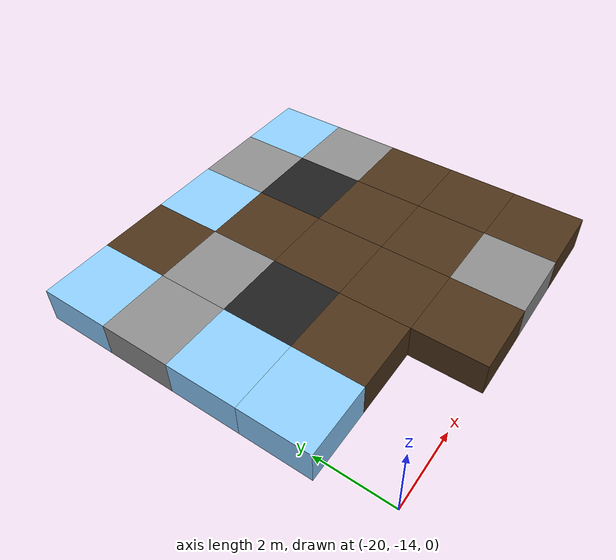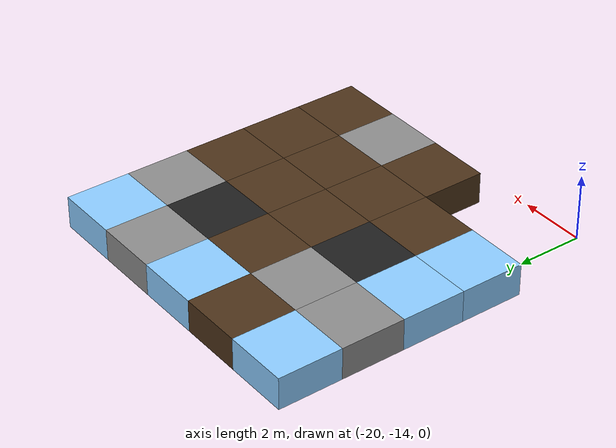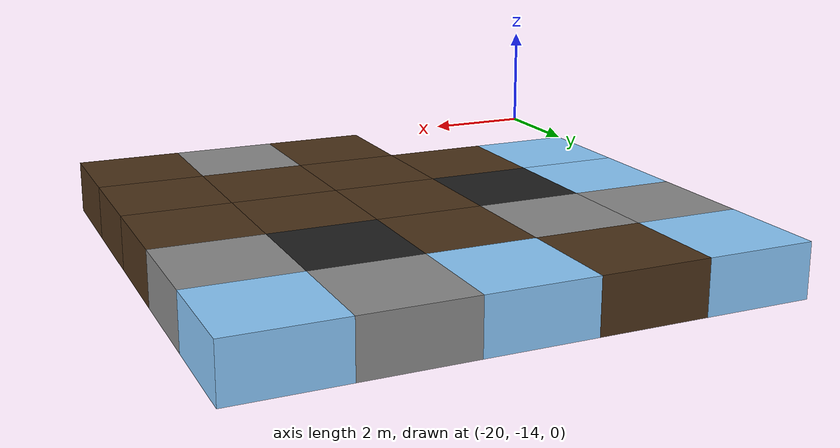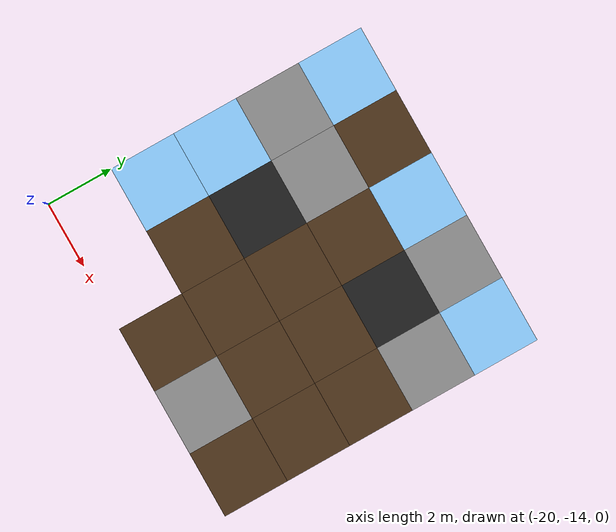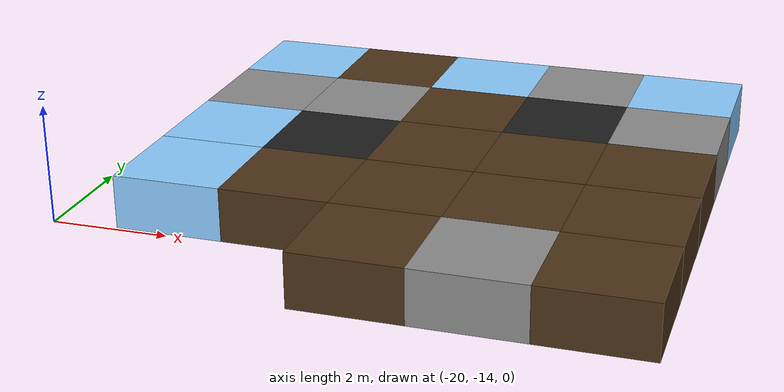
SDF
<sdf version="1.5">
 <world name="squares_example">
  <model name="tile_8_9">
   <static>true</static>
   <pose>-15.000 -13.000 -0.500 0 0 0</pose>
   <link name="link">
    <collision name="col">
     <geometry><box><size>2.0 2.0 1.0</size></box></geometry>
     <surface>
      <friction>
       <ode><mu>0.6</mu><mu2>0.4</mu2><fdir1>1 0 0</fdir1><slip1>0.08</slip1><slip2>0.08</slip2></ode>
       <torsional>
        <coefficient>0.03</coefficient>
        <use_patch_radius>false</use_patch_radius>
        <surface_radius>0.12</surface_radius>
        <ode><slip>0.0</slip></ode>
       </torsional>
      </friction>
      <bounce><restitution_coefficient>0.0</restitution_coefficient><threshold>0.1</threshold></bounce>
      <contact>
       <ode><kp>1000000.0</kp><kd>10000.0</kd><max_vel>0.01</max_vel><min_depth>0.0</min_depth></ode>
      </contact>
     </surface>
    </collision>
    <visual name="visual">
     <geometry><box><size>2.0 2.0 1.0</size></box></geometry>
     <material>
      <diffuse>0.30 0.20 0.10 1</diffuse>
      <ambient>0 0 0 0</ambient>
      <specular>0 0 0 1</specular>
      <emissive>0 0 0 1</emissive>
     </material>
    </visual>
   </link>
  </model>
  <model name="tile_9_9">
   <static>true</static>
   <pose>-13.000 -13.000 -0.500 0 0 0</pose>
   <link name="link">
    <collision name="col">
     <geometry><box><size>2.0 2.0 1.0</size></box></geometry>
     <surface>
      <friction>
       <ode><mu>0.8</mu><mu2>0.3</mu2><fdir1>1 0 0</fdir1><slip1>0.0</slip1><slip2>0.0</slip2></ode>
       <torsional>
        <coefficient>0.03</coefficient>
        <use_patch_radius>false</use_patch_radius>
        <surface_radius>0.12</surface_radius>
        <ode><slip>0.0</slip></ode>
       </torsional>
      </friction>
      <bounce><restitution_coefficient>0.0</restitution_coefficient><threshold>0.1</threshold></bounce>
      <contact>
       <ode><kp>10000000000.0</kp><kd>10000000.0</kd><max_vel>0.01</max_vel><min_depth>0.0</min_depth></ode>
      </contact>
     </surface>
    </collision>
    <visual name="visual">
     <geometry><box><size>2.0 2.0 1.0</size></box></geometry>
     <material>
      <diffuse>0.55 0.55 0.55 1</diffuse>
      <ambient>0 0 0 0</ambient>
      <specular>0 0 0 1</specular>
      <emissive>0 0 0 1</emissive>
     </material>
    </visual>
   </link>
  </model>
  <model name="tile_10_9">
   <static>true</static>
   <pose>-11.000 -13.000 -0.500 0 0 0</pose>
   <link name="link">
    <collision name="col">
     <geometry><box><size>2.0 2.0 1.0</size></box></geometry>
     <surface>
      <friction>
       <ode><mu>0.6</mu><mu2>0.4</mu2><fdir1>1 0 0</fdir1><slip1>0.08</slip1><slip2>0.08</slip2></ode>
       <torsional>
        <coefficient>0.03</coefficient>
        <use_patch_radius>false</use_patch_radius>
        <surface_radius>0.12</surface_radius>
        <ode><slip>0.0</slip></ode>
       </torsional>
      </friction>
      <bounce><restitution_coefficient>0.0</restitution_coefficient><threshold>0.1</threshold></bounce>
      <contact>
       <ode><kp>1000000.0</kp><kd>10000.0</kd><max_vel>0.01</max_vel><min_depth>0.0</min_depth></ode>
      </contact>
     </surface>
    </collision>
    <visual name="visual">
     <geometry><box><size>2.0 2.0 1.0</size></box></geometry>
     <material>
      <diffuse>0.30 0.20 0.10 1</diffuse>
      <ambient>0 0 0 0</ambient>
      <specular>0 0 0 1</specular>
      <emissive>0 0 0 1</emissive>
     </material>
    </visual>
   </link>
  </model>
  <model name="tile_6_10">
   <static>true</static>
   <pose>-19.000 -11.000 -0.500 0 0 0</pose>
   <link name="link">
    <collision name="col">
     <geometry><box><size>2.0 2.0 1.0</size></box></geometry>
     <surface>
      <friction>
       <ode><mu>0.03</mu><mu2>0.02</mu2><fdir1>1 0 0</fdir1><slip1>0.03</slip1><slip2>0.03</slip2></ode>
       <torsional>
        <coefficient>0.005</coefficient>
        <use_patch_radius>false</use_patch_radius>
        <surface_radius>0.12</surface_radius>
        <ode><slip>0.01</slip></ode>
       </torsional>
      </friction>
      <bounce><restitution_coefficient>0.0</restitution_coefficient><threshold>0.1</threshold></bounce>
      <contact>
       <ode><kp>10000000.0</kp><kd>1000.0</kd><max_vel>0.01</max_vel><min_depth>0.0</min_depth></ode>
      </contact>
     </surface>
    </collision>
    <visual name="visual">
     <geometry><box><size>2.0 2.0 1.0</size></box></geometry>
     <material>
      <diffuse>0.55 0.80 1.00 1</diffuse>
      <ambient>0 0 0 0</ambient>
      <specular>0 0 0 1</specular>
      <emissive>0 0 0 1</emissive>
     </material>
    </visual>
   </link>
  </model>
  <model name="tile_7_10">
   <static>true</static>
   <pose>-17.000 -11.000 -0.500 0 0 0</pose>
   <link name="link">
    <collision name="col">
     <geometry><box><size>2.0 2.0 1.0</size></box></geometry>
     <surface>
      <friction>
       <ode><mu>0.6</mu><mu2>0.4</mu2><fdir1>1 0 0</fdir1><slip1>0.08</slip1><slip2>0.08</slip2></ode>
       <torsional>
        <coefficient>0.03</coefficient>
        <use_patch_radius>false</use_patch_radius>
        <surface_radius>0.12</surface_radius>
        <ode><slip>0.0</slip></ode>
       </torsional>
      </friction>
      <bounce><restitution_coefficient>0.0</restitution_coefficient><threshold>0.1</threshold></bounce>
      <contact>
       <ode><kp>1000000.0</kp><kd>10000.0</kd><max_vel>0.01</max_vel><min_depth>0.0</min_depth></ode>
      </contact>
     </surface>
    </collision>
    <visual name="visual">
     <geometry><box><size>2.0 2.0 1.0</size></box></geometry>
     <material>
      <diffuse>0.30 0.20 0.10 1</diffuse>
      <ambient>0 0 0 0</ambient>
      <specular>0 0 0 1</specular>
      <emissive>0 0 0 1</emissive>
     </material>
    </visual>
   </link>
  </model>
  <model name="tile_8_10">
   <static>true</static>
   <pose>-15.000 -11.000 -0.500 0 0 0</pose>
   <link name="link">
    <collision name="col">
     <geometry><box><size>2.0 2.0 1.0</size></box></geometry>
     <surface>
      <friction>
       <ode><mu>0.6</mu><mu2>0.4</mu2><fdir1>1 0 0</fdir1><slip1>0.08</slip1><slip2>0.08</slip2></ode>
       <torsional>
        <coefficient>0.03</coefficient>
        <use_patch_radius>false</use_patch_radius>
        <surface_radius>0.12</surface_radius>
        <ode><slip>0.0</slip></ode>
       </torsional>
      </friction>
      <bounce><restitution_coefficient>0.0</restitution_coefficient><threshold>0.1</threshold></bounce>
      <contact>
       <ode><kp>1000000.0</kp><kd>10000.0</kd><max_vel>0.01</max_vel><min_depth>0.0</min_depth></ode>
      </contact>
     </surface>
    </collision>
    <visual name="visual">
     <geometry><box><size>2.0 2.0 1.0</size></box></geometry>
     <material>
      <diffuse>0.30 0.20 0.10 1</diffuse>
      <ambient>0 0 0 0</ambient>
      <specular>0 0 0 1</specular>
      <emissive>0 0 0 1</emissive>
     </material>
    </visual>
   </link>
  </model>
  <model name="tile_9_10">
   <static>true</static>
   <pose>-13.000 -11.000 -0.500 0 0 0</pose>
   <link name="link">
    <collision name="col">
     <geometry><box><size>2.0 2.0 1.0</size></box></geometry>
     <surface>
      <friction>
       <ode><mu>0.6</mu><mu2>0.4</mu2><fdir1>1 0 0</fdir1><slip1>0.08</slip1><slip2>0.08</slip2></ode>
       <torsional>
        <coefficient>0.03</coefficient>
        <use_patch_radius>false</use_patch_radius>
        <surface_radius>0.12</surface_radius>
        <ode><slip>0.0</slip></ode>
       </torsional>
      </friction>
      <bounce><restitution_coefficient>0.0</restitution_coefficient><threshold>0.1</threshold></bounce>
      <contact>
       <ode><kp>1000000.0</kp><kd>10000.0</kd><max_vel>0.01</max_vel><min_depth>0.0</min_depth></ode>
      </contact>
     </surface>
    </collision>
    <visual name="visual">
     <geometry><box><size>2.0 2.0 1.0</size></box></geometry>
     <material>
      <diffuse>0.30 0.20 0.10 1</diffuse>
      <ambient>0 0 0 0</ambient>
      <specular>0 0 0 1</specular>
      <emissive>0 0 0 1</emissive>
     </material>
    </visual>
   </link>
  </model>
  <model name="tile_10_10">
   <static>true</static>
   <pose>-11.000 -11.000 -0.500 0 0 0</pose>
   <link name="link">
    <collision name="col">
     <geometry><box><size>2.0 2.0 1.0</size></box></geometry>
     <surface>
      <friction>
       <ode><mu>0.6</mu><mu2>0.4</mu2><fdir1>1 0 0</fdir1><slip1>0.08</slip1><slip2>0.08</slip2></ode>
       <torsional>
        <coefficient>0.03</coefficient>
        <use_patch_radius>false</use_patch_radius>
        <surface_radius>0.12</surface_radius>
        <ode><slip>0.0</slip></ode>
       </torsional>
      </friction>
      <bounce><restitution_coefficient>0.0</restitution_coefficient><threshold>0.1</threshold></bounce>
      <contact>
       <ode><kp>1000000.0</kp><kd>10000.0</kd><max_vel>0.01</max_vel><min_depth>0.0</min_depth></ode>
      </contact>
     </surface>
    </collision>
    <visual name="visual">
     <geometry><box><size>2.0 2.0 1.0</size></box></geometry>
     <material>
      <diffuse>0.30 0.20 0.10 1</diffuse>
      <ambient>0 0 0 0</ambient>
      <specular>0 0 0 1</specular>
      <emissive>0 0 0 1</emissive>
     </material>
    </visual>
   </link>
  </model>
  <model name="tile_6_11">
   <static>true</static>
   <pose>-19.000 -9.000 -0.500 0 0 0</pose>
   <link name="link">
    <collision name="col">
     <geometry><box><size>2.0 2.0 1.0</size></box></geometry>
     <surface>
      <friction>
       <ode><mu>0.03</mu><mu2>0.02</mu2><fdir1>1 0 0</fdir1><slip1>0.03</slip1><slip2>0.03</slip2></ode>
       <torsional>
        <coefficient>0.005</coefficient>
        <use_patch_radius>false</use_patch_radius>
        <surface_radius>0.12</surface_radius>
        <ode><slip>0.01</slip></ode>
       </torsional>
      </friction>
      <bounce><restitution_coefficient>0.0</restitution_coefficient><threshold>0.1</threshold></bounce>
      <contact>
       <ode><kp>10000000.0</kp><kd>1000.0</kd><max_vel>0.01</max_vel><min_depth>0.0</min_depth></ode>
      </contact>
     </surface>
    </collision>
    <visual name="visual">
     <geometry><box><size>2.0 2.0 1.0</size></box></geometry>
     <material>
      <diffuse>0.55 0.80 1.00 1</diffuse>
      <ambient>0 0 0 0</ambient>
      <specular>0 0 0 1</specular>
      <emissive>0 0 0 1</emissive>
     </material>
    </visual>
   </link>
  </model>
  <model name="tile_7_11">
   <static>true</static>
   <pose>-17.000 -9.000 -0.500 0 0 0</pose>
   <link name="link">
    <collision name="col">
     <geometry><box><size>2.0 2.0 1.0</size></box></geometry>
     <surface>
      <friction>
       <ode><mu>0.4</mu><mu2>0.15</mu2><fdir1>1 0 0</fdir1><slip1>0.0</slip1><slip2>0.0</slip2></ode>
       <torsional>
        <coefficient>0.03</coefficient>
        <use_patch_radius>false</use_patch_radius>
        <surface_radius>0.12</surface_radius>
        <ode><slip>0.0</slip></ode>
       </torsional>
      </friction>
      <bounce><restitution_coefficient>0.0</restitution_coefficient><threshold>0.1</threshold></bounce>
      <contact>
       <ode><kp>1000000000.0</kp><kd>1000000.0</kd><max_vel>0.01</max_vel><min_depth>0.0</min_depth></ode>
      </contact>
     </surface>
    </collision>
    <visual name="visual">
     <geometry><box><size>2.0 2.0 1.0</size></box></geometry>
     <material>
      <diffuse>0.12 0.12 0.12 1</diffuse>
      <ambient>0 0 0 0</ambient>
      <specular>0 0 0 1</specular>
      <emissive>0 0 0 1</emissive>
     </material>
    </visual>
   </link>
  </model>
  <model name="tile_8_11">
   <static>true</static>
   <pose>-15.000 -9.000 -0.500 0 0 0</pose>
   <link name="link">
    <collision name="col">
     <geometry><box><size>2.0 2.0 1.0</size></box></geometry>
     <surface>
      <friction>
       <ode><mu>0.6</mu><mu2>0.4</mu2><fdir1>1 0 0</fdir1><slip1>0.08</slip1><slip2>0.08</slip2></ode>
       <torsional>
        <coefficient>0.03</coefficient>
        <use_patch_radius>false</use_patch_radius>
        <surface_radius>0.12</surface_radius>
        <ode><slip>0.0</slip></ode>
       </torsional>
      </friction>
      <bounce><restitution_coefficient>0.0</restitution_coefficient><threshold>0.1</threshold></bounce>
      <contact>
       <ode><kp>1000000.0</kp><kd>10000.0</kd><max_vel>0.01</max_vel><min_depth>0.0</min_depth></ode>
      </contact>
     </surface>
    </collision>
    <visual name="visual">
     <geometry><box><size>2.0 2.0 1.0</size></box></geometry>
     <material>
      <diffuse>0.30 0.20 0.10 1</diffuse>
      <ambient>0 0 0 0</ambient>
      <specular>0 0 0 1</specular>
      <emissive>0 0 0 1</emissive>
     </material>
    </visual>
   </link>
  </model>
  <model name="tile_9_11">
   <static>true</static>
   <pose>-13.000 -9.000 -0.500 0 0 0</pose>
   <link name="link">
    <collision name="col">
     <geometry><box><size>2.0 2.0 1.0</size></box></geometry>
     <surface>
      <friction>
       <ode><mu>0.6</mu><mu2>0.4</mu2><fdir1>1 0 0</fdir1><slip1>0.08</slip1><slip2>0.08</slip2></ode>
       <torsional>
        <coefficient>0.03</coefficient>
        <use_patch_radius>false</use_patch_radius>
        <surface_radius>0.12</surface_radius>
        <ode><slip>0.0</slip></ode>
       </torsional>
      </friction>
      <bounce><restitution_coefficient>0.0</restitution_coefficient><threshold>0.1</threshold></bounce>
      <contact>
       <ode><kp>1000000.0</kp><kd>10000.0</kd><max_vel>0.01</max_vel><min_depth>0.0</min_depth></ode>
      </contact>
     </surface>
    </collision>
    <visual name="visual">
     <geometry><box><size>2.0 2.0 1.0</size></box></geometry>
     <material>
      <diffuse>0.30 0.20 0.10 1</diffuse>
      <ambient>0 0 0 0</ambient>
      <specular>0 0 0 1</specular>
      <emissive>0 0 0 1</emissive>
     </material>
    </visual>
   </link>
  </model>
  <model name="tile_10_11">
   <static>true</static>
   <pose>-11.000 -9.000 -0.500 0 0 0</pose>
   <link name="link">
    <collision name="col">
     <geometry><box><size>2.0 2.0 1.0</size></box></geometry>
     <surface>
      <friction>
       <ode><mu>0.6</mu><mu2>0.4</mu2><fdir1>1 0 0</fdir1><slip1>0.08</slip1><slip2>0.08</slip2></ode>
       <torsional>
        <coefficient>0.03</coefficient>
        <use_patch_radius>false</use_patch_radius>
        <surface_radius>0.12</surface_radius>
        <ode><slip>0.0</slip></ode>
       </torsional>
      </friction>
      <bounce><restitution_coefficient>0.0</restitution_coefficient><threshold>0.1</threshold></bounce>
      <contact>
       <ode><kp>1000000.0</kp><kd>10000.0</kd><max_vel>0.01</max_vel><min_depth>0.0</min_depth></ode>
      </contact>
     </surface>
    </collision>
    <visual name="visual">
     <geometry><box><size>2.0 2.0 1.0</size></box></geometry>
     <material>
      <diffuse>0.30 0.20 0.10 1</diffuse>
      <ambient>0 0 0 0</ambient>
      <specular>0 0 0 1</specular>
      <emissive>0 0 0 1</emissive>
     </material>
    </visual>
   </link>
  </model>
  <model name="tile_6_12">
   <static>true</static>
   <pose>-19.000 -7.000 -0.500 0 0 0</pose>
   <link name="link">
    <collision name="col">
     <geometry><box><size>2.0 2.0 1.0</size></box></geometry>
     <surface>
      <friction>
       <ode><mu>0.8</mu><mu2>0.3</mu2><fdir1>1 0 0</fdir1><slip1>0.0</slip1><slip2>0.0</slip2></ode>
       <torsional>
        <coefficient>0.03</coefficient>
        <use_patch_radius>false</use_patch_radius>
        <surface_radius>0.12</surface_radius>
        <ode><slip>0.0</slip></ode>
       </torsional>
      </friction>
      <bounce><restitution_coefficient>0.0</restitution_coefficient><threshold>0.1</threshold></bounce>
      <contact>
       <ode><kp>10000000000.0</kp><kd>10000000.0</kd><max_vel>0.01</max_vel><min_depth>0.0</min_depth></ode>
      </contact>
     </surface>
    </collision>
    <visual name="visual">
     <geometry><box><size>2.0 2.0 1.0</size></box></geometry>
     <material>
      <diffuse>0.55 0.55 0.55 1</diffuse>
      <ambient>0 0 0 0</ambient>
      <specular>0 0 0 1</specular>
      <emissive>0 0 0 1</emissive>
     </material>
    </visual>
   </link>
  </model>
  <model name="tile_7_12">
   <static>true</static>
   <pose>-17.000 -7.000 -0.500 0 0 0</pose>
   <link name="link">
    <collision name="col">
     <geometry><box><size>2.0 2.0 1.0</size></box></geometry>
     <surface>
      <friction>
       <ode><mu>0.8</mu><mu2>0.3</mu2><fdir1>1 0 0</fdir1><slip1>0.0</slip1><slip2>0.0</slip2></ode>
       <torsional>
        <coefficient>0.03</coefficient>
        <use_patch_radius>false</use_patch_radius>
        <surface_radius>0.12</surface_radius>
        <ode><slip>0.0</slip></ode>
       </torsional>
      </friction>
      <bounce><restitution_coefficient>0.0</restitution_coefficient><threshold>0.1</threshold></bounce>
      <contact>
       <ode><kp>10000000000.0</kp><kd>10000000.0</kd><max_vel>0.01</max_vel><min_depth>0.0</min_depth></ode>
      </contact>
     </surface>
    </collision>
    <visual name="visual">
     <geometry><box><size>2.0 2.0 1.0</size></box></geometry>
     <material>
      <diffuse>0.55 0.55 0.55 1</diffuse>
      <ambient>0 0 0 0</ambient>
      <specular>0 0 0 1</specular>
      <emissive>0 0 0 1</emissive>
     </material>
    </visual>
   </link>
  </model>
  <model name="tile_8_12">
   <static>true</static>
   <pose>-15.000 -7.000 -0.500 0 0 0</pose>
   <link name="link">
    <collision name="col">
     <geometry><box><size>2.0 2.0 1.0</size></box></geometry>
     <surface>
      <friction>
       <ode><mu>0.6</mu><mu2>0.4</mu2><fdir1>1 0 0</fdir1><slip1>0.08</slip1><slip2>0.08</slip2></ode>
       <torsional>
        <coefficient>0.03</coefficient>
        <use_patch_radius>false</use_patch_radius>
        <surface_radius>0.12</surface_radius>
        <ode><slip>0.0</slip></ode>
       </torsional>
      </friction>
      <bounce><restitution_coefficient>0.0</restitution_coefficient><threshold>0.1</threshold></bounce>
      <contact>
       <ode><kp>1000000.0</kp><kd>10000.0</kd><max_vel>0.01</max_vel><min_depth>0.0</min_depth></ode>
      </contact>
     </surface>
    </collision>
    <visual name="visual">
     <geometry><box><size>2.0 2.0 1.0</size></box></geometry>
     <material>
      <diffuse>0.30 0.20 0.10 1</diffuse>
      <ambient>0 0 0 0</ambient>
      <specular>0 0 0 1</specular>
      <emissive>0 0 0 1</emissive>
     </material>
    </visual>
   </link>
  </model>
  <model name="tile_9_12">
   <static>true</static>
   <pose>-13.000 -7.000 -0.500 0 0 0</pose>
   <link name="link">
    <collision name="col">
     <geometry><box><size>2.0 2.0 1.0</size></box></geometry>
     <surface>
      <friction>
       <ode><mu>0.4</mu><mu2>0.15</mu2><fdir1>1 0 0</fdir1><slip1>0.0</slip1><slip2>0.0</slip2></ode>
       <torsional>
        <coefficient>0.03</coefficient>
        <use_patch_radius>false</use_patch_radius>
        <surface_radius>0.12</surface_radius>
        <ode><slip>0.0</slip></ode>
       </torsional>
      </friction>
      <bounce><restitution_coefficient>0.0</restitution_coefficient><threshold>0.1</threshold></bounce>
      <contact>
       <ode><kp>1000000000.0</kp><kd>1000000.0</kd><max_vel>0.01</max_vel><min_depth>0.0</min_depth></ode>
      </contact>
     </surface>
    </collision>
    <visual name="visual">
     <geometry><box><size>2.0 2.0 1.0</size></box></geometry>
     <material>
      <diffuse>0.12 0.12 0.12 1</diffuse>
      <ambient>0 0 0 0</ambient>
      <specular>0 0 0 1</specular>
      <emissive>0 0 0 1</emissive>
     </material>
    </visual>
   </link>
  </model>
  <model name="tile_10_12">
   <static>true</static>
   <pose>-11.000 -7.000 -0.500 0 0 0</pose>
   <link name="link">
    <collision name="col">
     <geometry><box><size>2.0 2.0 1.0</size></box></geometry>
     <surface>
      <friction>
       <ode><mu>0.8</mu><mu2>0.3</mu2><fdir1>1 0 0</fdir1><slip1>0.0</slip1><slip2>0.0</slip2></ode>
       <torsional>
        <coefficient>0.03</coefficient>
        <use_patch_radius>false</use_patch_radius>
        <surface_radius>0.12</surface_radius>
        <ode><slip>0.0</slip></ode>
       </torsional>
      </friction>
      <bounce><restitution_coefficient>0.0</restitution_coefficient><threshold>0.1</threshold></bounce>
      <contact>
       <ode><kp>10000000000.0</kp><kd>10000000.0</kd><max_vel>0.01</max_vel><min_depth>0.0</min_depth></ode>
      </contact>
     </surface>
    </collision>
    <visual name="visual">
     <geometry><box><size>2.0 2.0 1.0</size></box></geometry>
     <material>
      <diffuse>0.55 0.55 0.55 1</diffuse>
      <ambient>0 0 0 0</ambient>
      <specular>0 0 0 1</specular>
      <emissive>0 0 0 1</emissive>
     </material>
    </visual>
   </link>
  </model>
  <model name="tile_6_13">
   <static>true</static>
   <pose>-19.000 -5.000 -0.500 0 0 0</pose>
   <link name="link">
    <collision name="col">
     <geometry><box><size>2.0 2.0 1.0</size></box></geometry>
     <surface>
      <friction>
       <ode><mu>0.03</mu><mu2>0.02</mu2><fdir1>1 0 0</fdir1><slip1>0.03</slip1><slip2>0.03</slip2></ode>
       <torsional>
        <coefficient>0.005</coefficient>
        <use_patch_radius>false</use_patch_radius>
        <surface_radius>0.12</surface_radius>
        <ode><slip>0.01</slip></ode>
       </torsional>
      </friction>
      <bounce><restitution_coefficient>0.0</restitution_coefficient><threshold>0.1</threshold></bounce>
      <contact>
       <ode><kp>10000000.0</kp><kd>1000.0</kd><max_vel>0.01</max_vel><min_depth>0.0</min_depth></ode>
      </contact>
     </surface>
    </collision>
    <visual name="visual">
     <geometry><box><size>2.0 2.0 1.0</size></box></geometry>
     <material>
      <diffuse>0.55 0.80 1.00 1</diffuse>
      <ambient>0 0 0 0</ambient>
      <specular>0 0 0 1</specular>
      <emissive>0 0 0 1</emissive>
     </material>
    </visual>
   </link>
  </model>
  <model name="tile_7_13">
   <static>true</static>
   <pose>-17.000 -5.000 -0.500 0 0 0</pose>
   <link name="link">
    <collision name="col">
     <geometry><box><size>2.0 2.0 1.0</size></box></geometry>
     <surface>
      <friction>
       <ode><mu>0.6</mu><mu2>0.4</mu2><fdir1>1 0 0</fdir1><slip1>0.08</slip1><slip2>0.08</slip2></ode>
       <torsional>
        <coefficient>0.03</coefficient>
        <use_patch_radius>false</use_patch_radius>
        <surface_radius>0.12</surface_radius>
        <ode><slip>0.0</slip></ode>
       </torsional>
      </friction>
      <bounce><restitution_coefficient>0.0</restitution_coefficient><threshold>0.1</threshold></bounce>
      <contact>
       <ode><kp>1000000.0</kp><kd>10000.0</kd><max_vel>0.01</max_vel><min_depth>0.0</min_depth></ode>
      </contact>
     </surface>
    </collision>
    <visual name="visual">
     <geometry><box><size>2.0 2.0 1.0</size></box></geometry>
     <material>
      <diffuse>0.30 0.20 0.10 1</diffuse>
      <ambient>0 0 0 0</ambient>
      <specular>0 0 0 1</specular>
      <emissive>0 0 0 1</emissive>
     </material>
    </visual>
   </link>
  </model>
  <model name="tile_8_13">
   <static>true</static>
   <pose>-15.000 -5.000 -0.500 0 0 0</pose>
   <link name="link">
    <collision name="col">
     <geometry><box><size>2.0 2.0 1.0</size></box></geometry>
     <surface>
      <friction>
       <ode><mu>0.03</mu><mu2>0.02</mu2><fdir1>1 0 0</fdir1><slip1>0.03</slip1><slip2>0.03</slip2></ode>
       <torsional>
        <coefficient>0.005</coefficient>
        <use_patch_radius>false</use_patch_radius>
        <surface_radius>0.12</surface_radius>
        <ode><slip>0.01</slip></ode>
       </torsional>
      </friction>
      <bounce><restitution_coefficient>0.0</restitution_coefficient><threshold>0.1</threshold></bounce>
      <contact>
       <ode><kp>10000000.0</kp><kd>1000.0</kd><max_vel>0.01</max_vel><min_depth>0.0</min_depth></ode>
      </contact>
     </surface>
    </collision>
    <visual name="visual">
     <geometry><box><size>2.0 2.0 1.0</size></box></geometry>
     <material>
      <diffuse>0.55 0.80 1.00 1</diffuse>
      <ambient>0 0 0 0</ambient>
      <specular>0 0 0 1</specular>
      <emissive>0 0 0 1</emissive>
     </material>
    </visual>
   </link>
  </model>
  <model name="tile_9_13">
   <static>true</static>
   <pose>-13.000 -5.000 -0.500 0 0 0</pose>
   <link name="link">
    <collision name="col">
     <geometry><box><size>2.0 2.0 1.0</size></box></geometry>
     <surface>
      <friction>
       <ode><mu>0.8</mu><mu2>0.3</mu2><fdir1>1 0 0</fdir1><slip1>0.0</slip1><slip2>0.0</slip2></ode>
       <torsional>
        <coefficient>0.03</coefficient>
        <use_patch_radius>false</use_patch_radius>
        <surface_radius>0.12</surface_radius>
        <ode><slip>0.0</slip></ode>
       </torsional>
      </friction>
      <bounce><restitution_coefficient>0.0</restitution_coefficient><threshold>0.1</threshold></bounce>
      <contact>
       <ode><kp>10000000000.0</kp><kd>10000000.0</kd><max_vel>0.01</max_vel><min_depth>0.0</min_depth></ode>
      </contact>
     </surface>
    </collision>
    <visual name="visual">
     <geometry><box><size>2.0 2.0 1.0</size></box></geometry>
     <material>
      <diffuse>0.55 0.55 0.55 1</diffuse>
      <ambient>0 0 0 0</ambient>
      <specular>0 0 0 1</specular>
      <emissive>0 0 0 1</emissive>
     </material>
    </visual>
   </link>
  </model>
  <model name="tile_10_13">
   <static>true</static>
   <pose>-11.000 -5.000 -0.500 0 0 0</pose>
   <link name="link">
    <collision name="col">
     <geometry><box><size>2.0 2.0 1.0</size></box></geometry>
     <surface>
      <friction>
       <ode><mu>0.03</mu><mu2>0.02</mu2><fdir1>1 0 0</fdir1><slip1>0.03</slip1><slip2>0.03</slip2></ode>
       <torsional>
        <coefficient>0.005</coefficient>
        <use_patch_radius>false</use_patch_radius>
        <surface_radius>0.12</surface_radius>
        <ode><slip>0.01</slip></ode>
       </torsional>
      </friction>
      <bounce><restitution_coefficient>0.0</restitution_coefficient><threshold>0.1</threshold></bounce>
      <contact>
       <ode><kp>10000000.0</kp><kd>1000.0</kd><max_vel>0.01</max_vel><min_depth>0.0</min_depth></ode>
      </contact>
     </surface>
    </collision>
    <visual name="visual">
     <geometry><box><size>2.0 2.0 1.0</size></box></geometry>
     <material>
      <diffuse>0.55 0.80 1.00 1</diffuse>
      <ambient>0 0 0 0</ambient>
      <specular>0 0 0 1</specular>
      <emissive>0 0 0 1</emissive>
     </material>
    </visual>
   </link>
  </model>
 </world>
</sdf>
